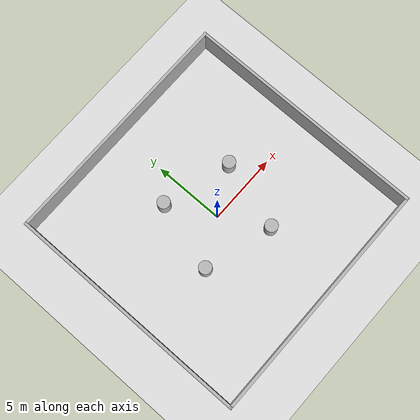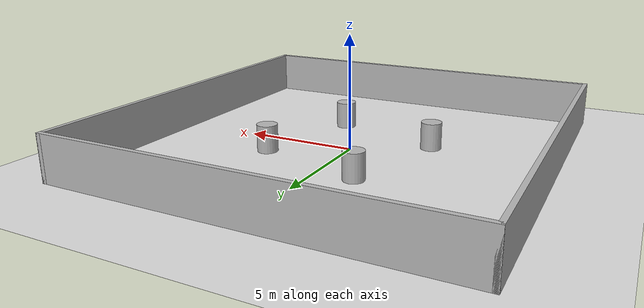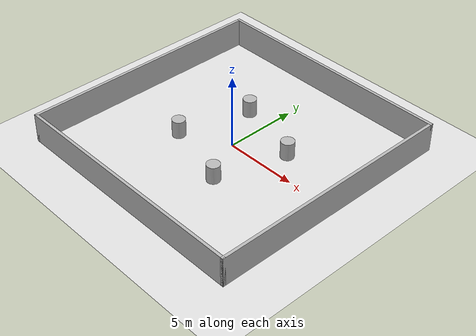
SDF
<?xml version="1.0"?>
<sdf version="1.9">
  <world name="unseen_dense_crossing">
    <gravity>0 0 -9.8</gravity>
    <plugin filename="ignition-gazebo-physics-system" name="ignition::gazebo::systems::Physics"/>
    <plugin filename="ignition-gazebo-scene-broadcaster-system" name="ignition::gazebo::systems::SceneBroadcaster"/>
    <plugin filename="ignition-gazebo-user-commands-system" name="ignition::gazebo::systems::UserCommands"/>
    <plugin filename="ignition-gazebo-sensors-system" name="ignition::gazebo::systems::Sensors">
      <render_engine>ogre2</render_engine>
    </plugin>
    <light name="sun" type="directional">
      <pose>0 0 12 0 0 0</pose>
      <diffuse>0.85 0.85 0.85 1</diffuse>
      <direction>-0.4 0.2 -0.9</direction>
    </light>
    <model name="ground_plane">
      <static>true</static>
      <link name="link">
        <collision name="collision"><geometry><plane><normal>0 0 1</normal><size>20 20</size></plane></geometry></collision>
        <visual name="visual"><geometry><plane><normal>0 0 1</normal><size>20 20</size></plane></geometry><material><diffuse>0.88 0.88 0.88 1</diffuse></material></visual>
      </link>
    </model>
    <model name="wall_north"><static>true</static><pose>0 8.5 1 0 0 0</pose><link name="link"><collision name="c"><geometry><box><size>17.2 0.2 2</size></box></geometry></collision><visual name="v"><geometry><box><size>17.2 0.2 2</size></box></geometry></visual></link></model>
    <model name="wall_south"><static>true</static><pose>0 -8.5 1 0 0 0</pose><link name="link"><collision name="c"><geometry><box><size>17.2 0.2 2</size></box></geometry></collision><visual name="v"><geometry><box><size>17.2 0.2 2</size></box></geometry></visual></link></model>
    <model name="wall_east"><static>true</static><pose>8.5 0 1 0 0 0</pose><link name="link"><collision name="c"><geometry><box><size>0.2 17.2 2</size></box></geometry></collision><visual name="v"><geometry><box><size>0.2 17.2 2</size></box></geometry></visual></link></model>
    <model name="wall_west"><static>true</static><pose>-8.5 0 1 0 0 0</pose><link name="link"><collision name="c"><geometry><box><size>0.2 17.2 2</size></box></geometry></collision><visual name="v"><geometry><box><size>0.2 17.2 2</size></box></geometry></visual></link></model>
    <model name="pillar_ne"><static>true</static><pose>3.1 1.7 0.6 0 0 0</pose><link name="link"><collision name="c"><geometry><cylinder><radius>0.45</radius><length>1.2</length></cylinder></geometry></collision><visual name="v"><geometry><cylinder><radius>0.45</radius><length>1.2</length></cylinder></geometry></visual></link></model>
    <model name="pillar_nw"><static>true</static><pose>-1.7 3.1 0.6 0 0 0</pose><link name="link"><collision name="c"><geometry><cylinder><radius>0.45</radius><length>1.2</length></cylinder></geometry></collision><visual name="v"><geometry><cylinder><radius>0.45</radius><length>1.2</length></cylinder></geometry></visual></link></model>
    <model name="pillar_sw"><static>true</static><pose>-3.1 -1.7 0.6 0 0 0</pose><link name="link"><collision name="c"><geometry><cylinder><radius>0.45</radius><length>1.2</length></cylinder></geometry></collision><visual name="v"><geometry><cylinder><radius>0.45</radius><length>1.2</length></cylinder></geometry></visual></link></model>
    <model name="pillar_se"><static>true</static><pose>1.7 -3.1 0.6 0 0 0</pose><link name="link"><collision name="c"><geometry><cylinder><radius>0.45</radius><length>1.2</length></cylinder></geometry></collision><visual name="v"><geometry><cylinder><radius>0.45</radius><length>1.2</length></cylinder></geometry></visual></link></model>
  </world>
</sdf>
